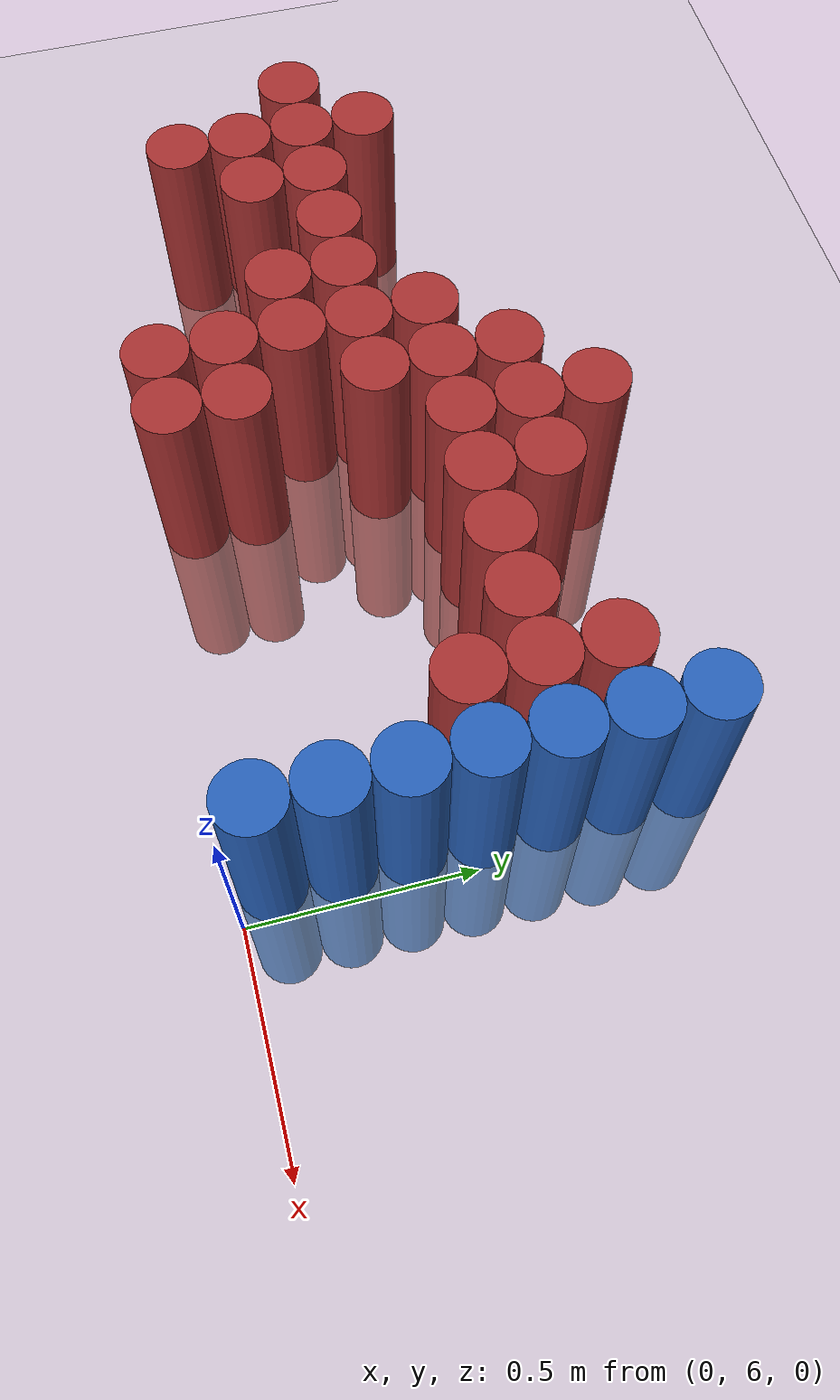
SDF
<sdf version="1.6">
 <world name="default">
  <model name="ground_plane">
   <static>1</static>
   <link name="link">
    <collision name="collision">
     <geometry><plane><normal>0 0 1</normal><size>100 100</size></plane></geometry>
     <surface><friction><ode><mu>100</mu><mu2>50</mu2></ode></friction></surface>
    </collision>
    <visual name="visual">
     <cast_shadows>0</cast_shadows>
     <geometry><plane><normal>0 0 1</normal><size>100 100</size></plane></geometry>
     <material>
      <script><uri>file://media/materials/scripts/gazebo.material</uri><name>Gazebo/Grey</name></script>
     </material>
    </visual>
   </link>
  </model>
  <model name="unit_cylinder_194">
   <static>1</static>
   <pose>-1.875000 6.525000 0.000000 0.000000 0.000000 0.000000</pose>
   <link name="link">
    <inertial>
     <mass>1</mass>
     <inertia><ixx>0.145833</ixx><ixy>0</ixy><ixz>0</ixz><iyy>0.145833</iyy><iyz>0</iyz><izz>0.125</izz></inertia>
    </inertial>
    <collision name="collision">
     <geometry><cylinder><radius>0.075000</radius><length>1</length></cylinder></geometry>
    </collision>
    <visual name="visual">
     <geometry><cylinder><radius>0.075000</radius><length>1</length></cylinder></geometry>
     <material>
      <ambient>0.648000 0.192000 0.192000 1</ambient>
      <diffuse>0.648000 0.192000 0.192000 1</diffuse>
     </material>
     <material>
      <script><name>Gazebo/Grey</name><uri>file://media/materials/scripts/gazebo.material</uri></script>
     </material>
    </visual>
    <sensor name="sensor_contact" type="contact"><contact><collision>collision</collision></contact></sensor>
   </link>
   <plugin filename="gz-sim-touchplugin-system" name="gz::sim::systems::TouchPlugin">
    <target>robot</target>
    <namespace>robot</namespace>
    <time>0.001</time>
    <enabled>true</enabled>
   </plugin>
  </model>
  <model name="unit_cylinder_198">
   <static>1</static>
   <pose>-1.725000 6.225000 0.000000 0.000000 0.000000 0.000000</pose>
   <link name="link">
    <inertial>
     <mass>1</mass>
     <inertia><ixx>0.145833</ixx><ixy>0</ixy><ixz>0</ixz><iyy>0.145833</iyy><iyz>0</iyz><izz>0.125</izz></inertia>
    </inertial>
    <collision name="collision">
     <geometry><cylinder><radius>0.075000</radius><length>1</length></cylinder></geometry>
    </collision>
    <visual name="visual">
     <geometry><cylinder><radius>0.075000</radius><length>1</length></cylinder></geometry>
     <material>
      <ambient>0.648000 0.192000 0.192000 1</ambient>
      <diffuse>0.648000 0.192000 0.192000 1</diffuse>
     </material>
     <material>
      <script><name>Gazebo/Grey</name><uri>file://media/materials/scripts/gazebo.material</uri></script>
     </material>
    </visual>
    <sensor name="sensor_contact" type="contact"><contact><collision>collision</collision></contact></sensor>
   </link>
   <plugin filename="gz-sim-touchplugin-system" name="gz::sim::systems::TouchPlugin">
    <target>robot</target>
    <namespace>robot</namespace>
    <time>0.001</time>
    <enabled>true</enabled>
   </plugin>
  </model>
  <model name="unit_cylinder_199">
   <static>1</static>
   <pose>-1.725000 6.375000 0.000000 0.000000 0.000000 0.000000</pose>
   <link name="link">
    <inertial>
     <mass>1</mass>
     <inertia><ixx>0.145833</ixx><ixy>0</ixy><ixz>0</ixz><iyy>0.145833</iyy><iyz>0</iyz><izz>0.125</izz></inertia>
    </inertial>
    <collision name="collision">
     <geometry><cylinder><radius>0.075000</radius><length>1</length></cylinder></geometry>
    </collision>
    <visual name="visual">
     <geometry><cylinder><radius>0.075000</radius><length>1</length></cylinder></geometry>
     <material>
      <ambient>0.648000 0.192000 0.192000 1</ambient>
      <diffuse>0.648000 0.192000 0.192000 1</diffuse>
     </material>
     <material>
      <script><name>Gazebo/Grey</name><uri>file://media/materials/scripts/gazebo.material</uri></script>
     </material>
    </visual>
    <sensor name="sensor_contact" type="contact"><contact><collision>collision</collision></contact></sensor>
   </link>
   <plugin filename="gz-sim-touchplugin-system" name="gz::sim::systems::TouchPlugin">
    <target>robot</target>
    <namespace>robot</namespace>
    <time>0.001</time>
    <enabled>true</enabled>
   </plugin>
  </model>
  <model name="unit_cylinder_200">
   <static>1</static>
   <pose>-1.725000 6.525000 0.000000 0.000000 0.000000 0.000000</pose>
   <link name="link">
    <inertial>
     <mass>1</mass>
     <inertia><ixx>0.145833</ixx><ixy>0</ixy><ixz>0</ixz><iyy>0.145833</iyy><iyz>0</iyz><izz>0.125</izz></inertia>
    </inertial>
    <collision name="collision">
     <geometry><cylinder><radius>0.075000</radius><length>1</length></cylinder></geometry>
    </collision>
    <visual name="visual">
     <geometry><cylinder><radius>0.075000</radius><length>1</length></cylinder></geometry>
     <material>
      <ambient>0.648000 0.192000 0.192000 1</ambient>
      <diffuse>0.648000 0.192000 0.192000 1</diffuse>
     </material>
     <material>
      <script><name>Gazebo/Grey</name><uri>file://media/materials/scripts/gazebo.material</uri></script>
     </material>
    </visual>
    <sensor name="sensor_contact" type="contact"><contact><collision>collision</collision></contact></sensor>
   </link>
   <plugin filename="gz-sim-touchplugin-system" name="gz::sim::systems::TouchPlugin">
    <target>robot</target>
    <namespace>robot</namespace>
    <time>0.001</time>
    <enabled>true</enabled>
   </plugin>
  </model>
  <model name="unit_cylinder_201">
   <static>1</static>
   <pose>-1.725000 6.675000 0.000000 0.000000 0.000000 0.000000</pose>
   <link name="link">
    <inertial>
     <mass>1</mass>
     <inertia><ixx>0.145833</ixx><ixy>0</ixy><ixz>0</ixz><iyy>0.145833</iyy><iyz>0</iyz><izz>0.125</izz></inertia>
    </inertial>
    <collision name="collision">
     <geometry><cylinder><radius>0.075000</radius><length>1</length></cylinder></geometry>
    </collision>
    <visual name="visual">
     <geometry><cylinder><radius>0.075000</radius><length>1</length></cylinder></geometry>
     <material>
      <ambient>0.648000 0.192000 0.192000 1</ambient>
      <diffuse>0.648000 0.192000 0.192000 1</diffuse>
     </material>
     <material>
      <script><name>Gazebo/Grey</name><uri>file://media/materials/scripts/gazebo.material</uri></script>
     </material>
    </visual>
    <sensor name="sensor_contact" type="contact"><contact><collision>collision</collision></contact></sensor>
   </link>
   <plugin filename="gz-sim-touchplugin-system" name="gz::sim::systems::TouchPlugin">
    <target>robot</target>
    <namespace>robot</namespace>
    <time>0.001</time>
    <enabled>true</enabled>
   </plugin>
  </model>
  <model name="unit_cylinder_207">
   <static>1</static>
   <pose>-1.575000 6.375000 0.000000 0.000000 0.000000 0.000000</pose>
   <link name="link">
    <inertial>
     <mass>1</mass>
     <inertia><ixx>0.145833</ixx><ixy>0</ixy><ixz>0</ixz><iyy>0.145833</iyy><iyz>0</iyz><izz>0.125</izz></inertia>
    </inertial>
    <collision name="collision">
     <geometry><cylinder><radius>0.075000</radius><length>1</length></cylinder></geometry>
    </collision>
    <visual name="visual">
     <geometry><cylinder><radius>0.075000</radius><length>1</length></cylinder></geometry>
     <material>
      <ambient>0.648000 0.192000 0.192000 1</ambient>
      <diffuse>0.648000 0.192000 0.192000 1</diffuse>
     </material>
     <material>
      <script><name>Gazebo/Grey</name><uri>file://media/materials/scripts/gazebo.material</uri></script>
     </material>
    </visual>
    <sensor name="sensor_contact" type="contact"><contact><collision>collision</collision></contact></sensor>
   </link>
   <plugin filename="gz-sim-touchplugin-system" name="gz::sim::systems::TouchPlugin">
    <target>robot</target>
    <namespace>robot</namespace>
    <time>0.001</time>
    <enabled>true</enabled>
   </plugin>
  </model>
  <model name="unit_cylinder_208">
   <static>1</static>
   <pose>-1.575000 6.525000 0.000000 0.000000 0.000000 0.000000</pose>
   <link name="link">
    <inertial>
     <mass>1</mass>
     <inertia><ixx>0.145833</ixx><ixy>0</ixy><ixz>0</ixz><iyy>0.145833</iyy><iyz>0</iyz><izz>0.125</izz></inertia>
    </inertial>
    <collision name="collision">
     <geometry><cylinder><radius>0.075000</radius><length>1</length></cylinder></geometry>
    </collision>
    <visual name="visual">
     <geometry><cylinder><radius>0.075000</radius><length>1</length></cylinder></geometry>
     <material>
      <ambient>0.648000 0.192000 0.192000 1</ambient>
      <diffuse>0.648000 0.192000 0.192000 1</diffuse>
     </material>
     <material>
      <script><name>Gazebo/Grey</name><uri>file://media/materials/scripts/gazebo.material</uri></script>
     </material>
    </visual>
    <sensor name="sensor_contact" type="contact"><contact><collision>collision</collision></contact></sensor>
   </link>
   <plugin filename="gz-sim-touchplugin-system" name="gz::sim::systems::TouchPlugin">
    <target>robot</target>
    <namespace>robot</namespace>
    <time>0.001</time>
    <enabled>true</enabled>
   </plugin>
  </model>
  <model name="unit_cylinder_218">
   <static>1</static>
   <pose>-1.425000 6.525000 0.000000 0.000000 0.000000 0.000000</pose>
   <link name="link">
    <inertial>
     <mass>1</mass>
     <inertia><ixx>0.145833</ixx><ixy>0</ixy><ixz>0</ixz><iyy>0.145833</iyy><iyz>0</iyz><izz>0.125</izz></inertia>
    </inertial>
    <collision name="collision">
     <geometry><cylinder><radius>0.075000</radius><length>1</length></cylinder></geometry>
    </collision>
    <visual name="visual">
     <geometry><cylinder><radius>0.075000</radius><length>1</length></cylinder></geometry>
     <material>
      <ambient>0.648000 0.192000 0.192000 1</ambient>
      <diffuse>0.648000 0.192000 0.192000 1</diffuse>
     </material>
     <material>
      <script><name>Gazebo/Grey</name><uri>file://media/materials/scripts/gazebo.material</uri></script>
     </material>
    </visual>
    <sensor name="sensor_contact" type="contact"><contact><collision>collision</collision></contact></sensor>
   </link>
   <plugin filename="gz-sim-touchplugin-system" name="gz::sim::systems::TouchPlugin">
    <target>robot</target>
    <namespace>robot</namespace>
    <time>0.001</time>
    <enabled>true</enabled>
   </plugin>
  </model>
  <model name="unit_cylinder_230">
   <static>1</static>
   <pose>-1.275000 6.375000 0.000000 0.000000 0.000000 0.000000</pose>
   <link name="link">
    <inertial>
     <mass>1</mass>
     <inertia><ixx>0.145833</ixx><ixy>0</ixy><ixz>0</ixz><iyy>0.145833</iyy><iyz>0</iyz><izz>0.125</izz></inertia>
    </inertial>
    <collision name="collision">
     <geometry><cylinder><radius>0.075000</radius><length>1</length></cylinder></geometry>
    </collision>
    <visual name="visual">
     <geometry><cylinder><radius>0.075000</radius><length>1</length></cylinder></geometry>
     <material>
      <ambient>0.648000 0.192000 0.192000 1</ambient>
      <diffuse>0.648000 0.192000 0.192000 1</diffuse>
     </material>
     <material>
      <script><name>Gazebo/Grey</name><uri>file://media/materials/scripts/gazebo.material</uri></script>
     </material>
    </visual>
    <sensor name="sensor_contact" type="contact"><contact><collision>collision</collision></contact></sensor>
   </link>
   <plugin filename="gz-sim-touchplugin-system" name="gz::sim::systems::TouchPlugin">
    <target>robot</target>
    <namespace>robot</namespace>
    <time>0.001</time>
    <enabled>true</enabled>
   </plugin>
  </model>
  <model name="unit_cylinder_231">
   <static>1</static>
   <pose>-1.275000 6.525000 0.000000 0.000000 0.000000 0.000000</pose>
   <link name="link">
    <inertial>
     <mass>1</mass>
     <inertia><ixx>0.145833</ixx><ixy>0</ixy><ixz>0</ixz><iyy>0.145833</iyy><iyz>0</iyz><izz>0.125</izz></inertia>
    </inertial>
    <collision name="collision">
     <geometry><cylinder><radius>0.075000</radius><length>1</length></cylinder></geometry>
    </collision>
    <visual name="visual">
     <geometry><cylinder><radius>0.075000</radius><length>1</length></cylinder></geometry>
     <material>
      <ambient>0.648000 0.192000 0.192000 1</ambient>
      <diffuse>0.648000 0.192000 0.192000 1</diffuse>
     </material>
     <material>
      <script><name>Gazebo/Grey</name><uri>file://media/materials/scripts/gazebo.material</uri></script>
     </material>
    </visual>
    <sensor name="sensor_contact" type="contact"><contact><collision>collision</collision></contact></sensor>
   </link>
   <plugin filename="gz-sim-touchplugin-system" name="gz::sim::systems::TouchPlugin">
    <target>robot</target>
    <namespace>robot</namespace>
    <time>0.001</time>
    <enabled>true</enabled>
   </plugin>
  </model>
  <model name="unit_cylinder_240">
   <static>1</static>
   <pose>-1.125000 6.075000 0.000000 0.000000 0.000000 0.000000</pose>
   <link name="link">
    <inertial>
     <mass>1</mass>
     <inertia><ixx>0.145833</ixx><ixy>0</ixy><ixz>0</ixz><iyy>0.145833</iyy><iyz>0</iyz><izz>0.125</izz></inertia>
    </inertial>
    <collision name="collision">
     <geometry><cylinder><radius>0.075000</radius><length>1</length></cylinder></geometry>
    </collision>
    <visual name="visual">
     <geometry><cylinder><radius>0.075000</radius><length>1</length></cylinder></geometry>
     <material>
      <ambient>0.648000 0.192000 0.192000 1</ambient>
      <diffuse>0.648000 0.192000 0.192000 1</diffuse>
     </material>
     <material>
      <script><name>Gazebo/Grey</name><uri>file://media/materials/scripts/gazebo.material</uri></script>
     </material>
    </visual>
    <sensor name="sensor_contact" type="contact"><contact><collision>collision</collision></contact></sensor>
   </link>
   <plugin filename="gz-sim-touchplugin-system" name="gz::sim::systems::TouchPlugin">
    <target>robot</target>
    <namespace>robot</namespace>
    <time>0.001</time>
    <enabled>true</enabled>
   </plugin>
  </model>
  <model name="unit_cylinder_241">
   <static>1</static>
   <pose>-1.125000 6.225000 0.000000 0.000000 0.000000 0.000000</pose>
   <link name="link">
    <inertial>
     <mass>1</mass>
     <inertia><ixx>0.145833</ixx><ixy>0</ixy><ixz>0</ixz><iyy>0.145833</iyy><iyz>0</iyz><izz>0.125</izz></inertia>
    </inertial>
    <collision name="collision">
     <geometry><cylinder><radius>0.075000</radius><length>1</length></cylinder></geometry>
    </collision>
    <visual name="visual">
     <geometry><cylinder><radius>0.075000</radius><length>1</length></cylinder></geometry>
     <material>
      <ambient>0.648000 0.192000 0.192000 1</ambient>
      <diffuse>0.648000 0.192000 0.192000 1</diffuse>
     </material>
     <material>
      <script><name>Gazebo/Grey</name><uri>file://media/materials/scripts/gazebo.material</uri></script>
     </material>
    </visual>
    <sensor name="sensor_contact" type="contact"><contact><collision>collision</collision></contact></sensor>
   </link>
   <plugin filename="gz-sim-touchplugin-system" name="gz::sim::systems::TouchPlugin">
    <target>robot</target>
    <namespace>robot</namespace>
    <time>0.001</time>
    <enabled>true</enabled>
   </plugin>
  </model>
  <model name="unit_cylinder_242">
   <static>1</static>
   <pose>-1.125000 6.375000 0.000000 0.000000 0.000000 0.000000</pose>
   <link name="link">
    <inertial>
     <mass>1</mass>
     <inertia><ixx>0.145833</ixx><ixy>0</ixy><ixz>0</ixz><iyy>0.145833</iyy><iyz>0</iyz><izz>0.125</izz></inertia>
    </inertial>
    <collision name="collision">
     <geometry><cylinder><radius>0.075000</radius><length>1</length></cylinder></geometry>
    </collision>
    <visual name="visual">
     <geometry><cylinder><radius>0.075000</radius><length>1</length></cylinder></geometry>
     <material>
      <ambient>0.648000 0.192000 0.192000 1</ambient>
      <diffuse>0.648000 0.192000 0.192000 1</diffuse>
     </material>
     <material>
      <script><name>Gazebo/Grey</name><uri>file://media/materials/scripts/gazebo.material</uri></script>
     </material>
    </visual>
    <sensor name="sensor_contact" type="contact"><contact><collision>collision</collision></contact></sensor>
   </link>
   <plugin filename="gz-sim-touchplugin-system" name="gz::sim::systems::TouchPlugin">
    <target>robot</target>
    <namespace>robot</namespace>
    <time>0.001</time>
    <enabled>true</enabled>
   </plugin>
  </model>
  <model name="unit_cylinder_243">
   <static>1</static>
   <pose>-1.125000 6.525000 0.000000 0.000000 0.000000 0.000000</pose>
   <link name="link">
    <inertial>
     <mass>1</mass>
     <inertia><ixx>0.145833</ixx><ixy>0</ixy><ixz>0</ixz><iyy>0.145833</iyy><iyz>0</iyz><izz>0.125</izz></inertia>
    </inertial>
    <collision name="collision">
     <geometry><cylinder><radius>0.075000</radius><length>1</length></cylinder></geometry>
    </collision>
    <visual name="visual">
     <geometry><cylinder><radius>0.075000</radius><length>1</length></cylinder></geometry>
     <material>
      <ambient>0.648000 0.192000 0.192000 1</ambient>
      <diffuse>0.648000 0.192000 0.192000 1</diffuse>
     </material>
     <material>
      <script><name>Gazebo/Grey</name><uri>file://media/materials/scripts/gazebo.material</uri></script>
     </material>
    </visual>
    <sensor name="sensor_contact" type="contact"><contact><collision>collision</collision></contact></sensor>
   </link>
   <plugin filename="gz-sim-touchplugin-system" name="gz::sim::systems::TouchPlugin">
    <target>robot</target>
    <namespace>robot</namespace>
    <time>0.001</time>
    <enabled>true</enabled>
   </plugin>
  </model>
  <model name="unit_cylinder_244">
   <static>1</static>
   <pose>-1.125000 6.675000 0.000000 0.000000 0.000000 0.000000</pose>
   <link name="link">
    <inertial>
     <mass>1</mass>
     <inertia><ixx>0.145833</ixx><ixy>0</ixy><ixz>0</ixz><iyy>0.145833</iyy><iyz>0</iyz><izz>0.125</izz></inertia>
    </inertial>
    <collision name="collision">
     <geometry><cylinder><radius>0.075000</radius><length>1</length></cylinder></geometry>
    </collision>
    <visual name="visual">
     <geometry><cylinder><radius>0.075000</radius><length>1</length></cylinder></geometry>
     <material>
      <ambient>0.648000 0.192000 0.192000 1</ambient>
      <diffuse>0.648000 0.192000 0.192000 1</diffuse>
     </material>
     <material>
      <script><name>Gazebo/Grey</name><uri>file://media/materials/scripts/gazebo.material</uri></script>
     </material>
    </visual>
    <sensor name="sensor_contact" type="contact"><contact><collision>collision</collision></contact></sensor>
   </link>
   <plugin filename="gz-sim-touchplugin-system" name="gz::sim::systems::TouchPlugin">
    <target>robot</target>
    <namespace>robot</namespace>
    <time>0.001</time>
    <enabled>true</enabled>
   </plugin>
  </model>
  <model name="unit_cylinder_251">
   <static>1</static>
   <pose>-0.975000 6.075000 0.000000 0.000000 0.000000 0.000000</pose>
   <link name="link">
    <inertial>
     <mass>1</mass>
     <inertia><ixx>0.145833</ixx><ixy>0</ixy><ixz>0</ixz><iyy>0.145833</iyy><iyz>0</iyz><izz>0.125</izz></inertia>
    </inertial>
    <collision name="collision">
     <geometry><cylinder><radius>0.075000</radius><length>1</length></cylinder></geometry>
    </collision>
    <visual name="visual">
     <geometry><cylinder><radius>0.075000</radius><length>1</length></cylinder></geometry>
     <material>
      <ambient>0.648000 0.192000 0.192000 1</ambient>
      <diffuse>0.648000 0.192000 0.192000 1</diffuse>
     </material>
     <material>
      <script><name>Gazebo/Grey</name><uri>file://media/materials/scripts/gazebo.material</uri></script>
     </material>
    </visual>
    <sensor name="sensor_contact" type="contact"><contact><collision>collision</collision></contact></sensor>
   </link>
   <plugin filename="gz-sim-touchplugin-system" name="gz::sim::systems::TouchPlugin">
    <target>robot</target>
    <namespace>robot</namespace>
    <time>0.001</time>
    <enabled>true</enabled>
   </plugin>
  </model>
  <model name="unit_cylinder_252">
   <static>1</static>
   <pose>-0.975000 6.225000 0.000000 0.000000 0.000000 0.000000</pose>
   <link name="link">
    <inertial>
     <mass>1</mass>
     <inertia><ixx>0.145833</ixx><ixy>0</ixy><ixz>0</ixz><iyy>0.145833</iyy><iyz>0</iyz><izz>0.125</izz></inertia>
    </inertial>
    <collision name="collision">
     <geometry><cylinder><radius>0.075000</radius><length>1</length></cylinder></geometry>
    </collision>
    <visual name="visual">
     <geometry><cylinder><radius>0.075000</radius><length>1</length></cylinder></geometry>
     <material>
      <ambient>0.648000 0.192000 0.192000 1</ambient>
      <diffuse>0.648000 0.192000 0.192000 1</diffuse>
     </material>
     <material>
      <script><name>Gazebo/Grey</name><uri>file://media/materials/scripts/gazebo.material</uri></script>
     </material>
    </visual>
    <sensor name="sensor_contact" type="contact"><contact><collision>collision</collision></contact></sensor>
   </link>
   <plugin filename="gz-sim-touchplugin-system" name="gz::sim::systems::TouchPlugin">
    <target>robot</target>
    <namespace>robot</namespace>
    <time>0.001</time>
    <enabled>true</enabled>
   </plugin>
  </model>
  <model name="unit_cylinder_253">
   <static>1</static>
   <pose>-0.975000 6.525000 0.000000 0.000000 0.000000 0.000000</pose>
   <link name="link">
    <inertial>
     <mass>1</mass>
     <inertia><ixx>0.145833</ixx><ixy>0</ixy><ixz>0</ixz><iyy>0.145833</iyy><iyz>0</iyz><izz>0.125</izz></inertia>
    </inertial>
    <collision name="collision">
     <geometry><cylinder><radius>0.075000</radius><length>1</length></cylinder></geometry>
    </collision>
    <visual name="visual">
     <geometry><cylinder><radius>0.075000</radius><length>1</length></cylinder></geometry>
     <material>
      <ambient>0.648000 0.192000 0.192000 1</ambient>
      <diffuse>0.648000 0.192000 0.192000 1</diffuse>
     </material>
     <material>
      <script><name>Gazebo/Grey</name><uri>file://media/materials/scripts/gazebo.material</uri></script>
     </material>
    </visual>
    <sensor name="sensor_contact" type="contact"><contact><collision>collision</collision></contact></sensor>
   </link>
   <plugin filename="gz-sim-touchplugin-system" name="gz::sim::systems::TouchPlugin">
    <target>robot</target>
    <namespace>robot</namespace>
    <time>0.001</time>
    <enabled>true</enabled>
   </plugin>
  </model>
  <model name="unit_cylinder_254">
   <static>1</static>
   <pose>-0.975000 6.675000 0.000000 0.000000 0.000000 0.000000</pose>
   <link name="link">
    <inertial>
     <mass>1</mass>
     <inertia><ixx>0.145833</ixx><ixy>0</ixy><ixz>0</ixz><iyy>0.145833</iyy><iyz>0</iyz><izz>0.125</izz></inertia>
    </inertial>
    <collision name="collision">
     <geometry><cylinder><radius>0.075000</radius><length>1</length></cylinder></geometry>
    </collision>
    <visual name="visual">
     <geometry><cylinder><radius>0.075000</radius><length>1</length></cylinder></geometry>
     <material>
      <ambient>0.648000 0.192000 0.192000 1</ambient>
      <diffuse>0.648000 0.192000 0.192000 1</diffuse>
     </material>
     <material>
      <script><name>Gazebo/Grey</name><uri>file://media/materials/scripts/gazebo.material</uri></script>
     </material>
    </visual>
    <sensor name="sensor_contact" type="contact"><contact><collision>collision</collision></contact></sensor>
   </link>
   <plugin filename="gz-sim-touchplugin-system" name="gz::sim::systems::TouchPlugin">
    <target>robot</target>
    <namespace>robot</namespace>
    <time>0.001</time>
    <enabled>true</enabled>
   </plugin>
  </model>
  <model name="unit_cylinder_255">
   <static>1</static>
   <pose>-0.975000 6.825000 0.000000 0.000000 0.000000 0.000000</pose>
   <link name="link">
    <inertial>
     <mass>1</mass>
     <inertia><ixx>0.145833</ixx><ixy>0</ixy><ixz>0</ixz><iyy>0.145833</iyy><iyz>0</iyz><izz>0.125</izz></inertia>
    </inertial>
    <collision name="collision">
     <geometry><cylinder><radius>0.075000</radius><length>1</length></cylinder></geometry>
    </collision>
    <visual name="visual">
     <geometry><cylinder><radius>0.075000</radius><length>1</length></cylinder></geometry>
     <material>
      <ambient>0.648000 0.192000 0.192000 1</ambient>
      <diffuse>0.648000 0.192000 0.192000 1</diffuse>
     </material>
     <material>
      <script><name>Gazebo/Grey</name><uri>file://media/materials/scripts/gazebo.material</uri></script>
     </material>
    </visual>
    <sensor name="sensor_contact" type="contact"><contact><collision>collision</collision></contact></sensor>
   </link>
   <plugin filename="gz-sim-touchplugin-system" name="gz::sim::systems::TouchPlugin">
    <target>robot</target>
    <namespace>robot</namespace>
    <time>0.001</time>
    <enabled>true</enabled>
   </plugin>
  </model>
  <model name="unit_cylinder_263">
   <static>1</static>
   <pose>-0.825000 6.675000 0.000000 0.000000 0.000000 0.000000</pose>
   <link name="link">
    <inertial>
     <mass>1</mass>
     <inertia><ixx>0.145833</ixx><ixy>0</ixy><ixz>0</ixz><iyy>0.145833</iyy><iyz>0</iyz><izz>0.125</izz></inertia>
    </inertial>
    <collision name="collision">
     <geometry><cylinder><radius>0.075000</radius><length>1</length></cylinder></geometry>
    </collision>
    <visual name="visual">
     <geometry><cylinder><radius>0.075000</radius><length>1</length></cylinder></geometry>
     <material>
      <ambient>0.648000 0.192000 0.192000 1</ambient>
      <diffuse>0.648000 0.192000 0.192000 1</diffuse>
     </material>
     <material>
      <script><name>Gazebo/Grey</name><uri>file://media/materials/scripts/gazebo.material</uri></script>
     </material>
    </visual>
    <sensor name="sensor_contact" type="contact"><contact><collision>collision</collision></contact></sensor>
   </link>
   <plugin filename="gz-sim-touchplugin-system" name="gz::sim::systems::TouchPlugin">
    <target>robot</target>
    <namespace>robot</namespace>
    <time>0.001</time>
    <enabled>true</enabled>
   </plugin>
  </model>
  <model name="unit_cylinder_264">
   <static>1</static>
   <pose>-0.825000 6.825000 0.000000 0.000000 0.000000 0.000000</pose>
   <link name="link">
    <inertial>
     <mass>1</mass>
     <inertia><ixx>0.145833</ixx><ixy>0</ixy><ixz>0</ixz><iyy>0.145833</iyy><iyz>0</iyz><izz>0.125</izz></inertia>
    </inertial>
    <collision name="collision">
     <geometry><cylinder><radius>0.075000</radius><length>1</length></cylinder></geometry>
    </collision>
    <visual name="visual">
     <geometry><cylinder><radius>0.075000</radius><length>1</length></cylinder></geometry>
     <material>
      <ambient>0.648000 0.192000 0.192000 1</ambient>
      <diffuse>0.648000 0.192000 0.192000 1</diffuse>
     </material>
     <material>
      <script><name>Gazebo/Grey</name><uri>file://media/materials/scripts/gazebo.material</uri></script>
     </material>
    </visual>
    <sensor name="sensor_contact" type="contact"><contact><collision>collision</collision></contact></sensor>
   </link>
   <plugin filename="gz-sim-touchplugin-system" name="gz::sim::systems::TouchPlugin">
    <target>robot</target>
    <namespace>robot</namespace>
    <time>0.001</time>
    <enabled>true</enabled>
   </plugin>
  </model>
  <model name="unit_cylinder_265">
   <static>1</static>
   <pose>-0.825000 6.975000 0.000000 0.000000 0.000000 0.000000</pose>
   <link name="link">
    <inertial>
     <mass>1</mass>
     <inertia><ixx>0.145833</ixx><ixy>0</ixy><ixz>0</ixz><iyy>0.145833</iyy><iyz>0</iyz><izz>0.125</izz></inertia>
    </inertial>
    <collision name="collision">
     <geometry><cylinder><radius>0.075000</radius><length>1</length></cylinder></geometry>
    </collision>
    <visual name="visual">
     <geometry><cylinder><radius>0.075000</radius><length>1</length></cylinder></geometry>
     <material>
      <ambient>0.648000 0.192000 0.192000 1</ambient>
      <diffuse>0.648000 0.192000 0.192000 1</diffuse>
     </material>
     <material>
      <script><name>Gazebo/Grey</name><uri>file://media/materials/scripts/gazebo.material</uri></script>
     </material>
    </visual>
    <sensor name="sensor_contact" type="contact"><contact><collision>collision</collision></contact></sensor>
   </link>
   <plugin filename="gz-sim-touchplugin-system" name="gz::sim::systems::TouchPlugin">
    <target>robot</target>
    <namespace>robot</namespace>
    <time>0.001</time>
    <enabled>true</enabled>
   </plugin>
  </model>
  <model name="unit_cylinder_270">
   <static>1</static>
   <pose>-0.675000 6.675000 0.000000 0.000000 0.000000 0.000000</pose>
   <link name="link">
    <inertial>
     <mass>1</mass>
     <inertia><ixx>0.145833</ixx><ixy>0</ixy><ixz>0</ixz><iyy>0.145833</iyy><iyz>0</iyz><izz>0.125</izz></inertia>
    </inertial>
    <collision name="collision">
     <geometry><cylinder><radius>0.075000</radius><length>1</length></cylinder></geometry>
    </collision>
    <visual name="visual">
     <geometry><cylinder><radius>0.075000</radius><length>1</length></cylinder></geometry>
     <material>
      <ambient>0.648000 0.192000 0.192000 1</ambient>
      <diffuse>0.648000 0.192000 0.192000 1</diffuse>
     </material>
     <material>
      <script><name>Gazebo/Grey</name><uri>file://media/materials/scripts/gazebo.material</uri></script>
     </material>
    </visual>
    <sensor name="sensor_contact" type="contact"><contact><collision>collision</collision></contact></sensor>
   </link>
   <plugin filename="gz-sim-touchplugin-system" name="gz::sim::systems::TouchPlugin">
    <target>robot</target>
    <namespace>robot</namespace>
    <time>0.001</time>
    <enabled>true</enabled>
   </plugin>
  </model>
  <model name="unit_cylinder_271">
   <static>1</static>
   <pose>-0.675000 6.825000 0.000000 0.000000 0.000000 0.000000</pose>
   <link name="link">
    <inertial>
     <mass>1</mass>
     <inertia><ixx>0.145833</ixx><ixy>0</ixy><ixz>0</ixz><iyy>0.145833</iyy><iyz>0</iyz><izz>0.125</izz></inertia>
    </inertial>
    <collision name="collision">
     <geometry><cylinder><radius>0.075000</radius><length>1</length></cylinder></geometry>
    </collision>
    <visual name="visual">
     <geometry><cylinder><radius>0.075000</radius><length>1</length></cylinder></geometry>
     <material>
      <ambient>0.648000 0.192000 0.192000 1</ambient>
      <diffuse>0.648000 0.192000 0.192000 1</diffuse>
     </material>
     <material>
      <script><name>Gazebo/Grey</name><uri>file://media/materials/scripts/gazebo.material</uri></script>
     </material>
    </visual>
    <sensor name="sensor_contact" type="contact"><contact><collision>collision</collision></contact></sensor>
   </link>
   <plugin filename="gz-sim-touchplugin-system" name="gz::sim::systems::TouchPlugin">
    <target>robot</target>
    <namespace>robot</namespace>
    <time>0.001</time>
    <enabled>true</enabled>
   </plugin>
  </model>
  <model name="unit_cylinder_278">
   <static>1</static>
   <pose>-0.525000 6.675000 0.000000 0.000000 0.000000 0.000000</pose>
   <link name="link">
    <inertial>
     <mass>1</mass>
     <inertia><ixx>0.145833</ixx><ixy>0</ixy><ixz>0</ixz><iyy>0.145833</iyy><iyz>0</iyz><izz>0.125</izz></inertia>
    </inertial>
    <collision name="collision">
     <geometry><cylinder><radius>0.075000</radius><length>1</length></cylinder></geometry>
    </collision>
    <visual name="visual">
     <geometry><cylinder><radius>0.075000</radius><length>1</length></cylinder></geometry>
     <material>
      <ambient>0.648000 0.192000 0.192000 1</ambient>
      <diffuse>0.648000 0.192000 0.192000 1</diffuse>
     </material>
     <material>
      <script><name>Gazebo/Grey</name><uri>file://media/materials/scripts/gazebo.material</uri></script>
     </material>
    </visual>
    <sensor name="sensor_contact" type="contact"><contact><collision>collision</collision></contact></sensor>
   </link>
   <plugin filename="gz-sim-touchplugin-system" name="gz::sim::systems::TouchPlugin">
    <target>robot</target>
    <namespace>robot</namespace>
    <time>0.001</time>
    <enabled>true</enabled>
   </plugin>
  </model>
  <model name="unit_cylinder_284">
   <static>1</static>
   <pose>-0.375000 6.675000 0.000000 0.000000 0.000000 0.000000</pose>
   <link name="link">
    <inertial>
     <mass>1</mass>
     <inertia><ixx>0.145833</ixx><ixy>0</ixy><ixz>0</ixz><iyy>0.145833</iyy><iyz>0</iyz><izz>0.125</izz></inertia>
    </inertial>
    <collision name="collision">
     <geometry><cylinder><radius>0.075000</radius><length>1</length></cylinder></geometry>
    </collision>
    <visual name="visual">
     <geometry><cylinder><radius>0.075000</radius><length>1</length></cylinder></geometry>
     <material>
      <ambient>0.648000 0.192000 0.192000 1</ambient>
      <diffuse>0.648000 0.192000 0.192000 1</diffuse>
     </material>
     <material>
      <script><name>Gazebo/Grey</name><uri>file://media/materials/scripts/gazebo.material</uri></script>
     </material>
    </visual>
    <sensor name="sensor_contact" type="contact"><contact><collision>collision</collision></contact></sensor>
   </link>
   <plugin filename="gz-sim-touchplugin-system" name="gz::sim::systems::TouchPlugin">
    <target>robot</target>
    <namespace>robot</namespace>
    <time>0.001</time>
    <enabled>true</enabled>
   </plugin>
  </model>
  <model name="unit_cylinder_295">
   <static>1</static>
   <pose>-0.225000 6.525000 0.000000 0.000000 0.000000 0.000000</pose>
   <link name="link">
    <inertial>
     <mass>1</mass>
     <inertia><ixx>0.145833</ixx><ixy>0</ixy><ixz>0</ixz><iyy>0.145833</iyy><iyz>0</iyz><izz>0.125</izz></inertia>
    </inertial>
    <collision name="collision">
     <geometry><cylinder><radius>0.075000</radius><length>1</length></cylinder></geometry>
    </collision>
    <visual name="visual">
     <geometry><cylinder><radius>0.075000</radius><length>1</length></cylinder></geometry>
     <material>
      <ambient>0.648000 0.192000 0.192000 1</ambient>
      <diffuse>0.648000 0.192000 0.192000 1</diffuse>
     </material>
     <material>
      <script><name>Gazebo/Grey</name><uri>file://media/materials/scripts/gazebo.material</uri></script>
     </material>
    </visual>
    <sensor name="sensor_contact" type="contact"><contact><collision>collision</collision></contact></sensor>
   </link>
   <plugin filename="gz-sim-touchplugin-system" name="gz::sim::systems::TouchPlugin">
    <target>robot</target>
    <namespace>robot</namespace>
    <time>0.001</time>
    <enabled>true</enabled>
   </plugin>
  </model>
  <model name="unit_cylinder_296">
   <static>1</static>
   <pose>-0.225000 6.675000 0.000000 0.000000 0.000000 0.000000</pose>
   <link name="link">
    <inertial>
     <mass>1</mass>
     <inertia><ixx>0.145833</ixx><ixy>0</ixy><ixz>0</ixz><iyy>0.145833</iyy><iyz>0</iyz><izz>0.125</izz></inertia>
    </inertial>
    <collision name="collision">
     <geometry><cylinder><radius>0.075000</radius><length>1</length></cylinder></geometry>
    </collision>
    <visual name="visual">
     <geometry><cylinder><radius>0.075000</radius><length>1</length></cylinder></geometry>
     <material>
      <ambient>0.648000 0.192000 0.192000 1</ambient>
      <diffuse>0.648000 0.192000 0.192000 1</diffuse>
     </material>
     <material>
      <script><name>Gazebo/Grey</name><uri>file://media/materials/scripts/gazebo.material</uri></script>
     </material>
    </visual>
    <sensor name="sensor_contact" type="contact"><contact><collision>collision</collision></contact></sensor>
   </link>
   <plugin filename="gz-sim-touchplugin-system" name="gz::sim::systems::TouchPlugin">
    <target>robot</target>
    <namespace>robot</namespace>
    <time>0.001</time>
    <enabled>true</enabled>
   </plugin>
  </model>
  <model name="unit_cylinder_297">
   <static>1</static>
   <pose>-0.225000 6.825000 0.000000 0.000000 0.000000 0.000000</pose>
   <link name="link">
    <inertial>
     <mass>1</mass>
     <inertia><ixx>0.145833</ixx><ixy>0</ixy><ixz>0</ixz><iyy>0.145833</iyy><iyz>0</iyz><izz>0.125</izz></inertia>
    </inertial>
    <collision name="collision">
     <geometry><cylinder><radius>0.075000</radius><length>1</length></cylinder></geometry>
    </collision>
    <visual name="visual">
     <geometry><cylinder><radius>0.075000</radius><length>1</length></cylinder></geometry>
     <material>
      <ambient>0.648000 0.192000 0.192000 1</ambient>
      <diffuse>0.648000 0.192000 0.192000 1</diffuse>
     </material>
     <material>
      <script><name>Gazebo/Grey</name><uri>file://media/materials/scripts/gazebo.material</uri></script>
     </material>
    </visual>
    <sensor name="sensor_contact" type="contact"><contact><collision>collision</collision></contact></sensor>
   </link>
   <plugin filename="gz-sim-touchplugin-system" name="gz::sim::systems::TouchPlugin">
    <target>robot</target>
    <namespace>robot</namespace>
    <time>0.001</time>
    <enabled>true</enabled>
   </plugin>
  </model>
  <model name="unit_cylinder_313">
   <static>1</static>
   <pose>-0.075000 6.075000 0.000000 0.000000 0.000000 0.000000</pose>
   <link name="link">
    <inertial>
     <mass>1</mass>
     <inertia><ixx>0.145833</ixx><ixy>0</ixy><ixz>0</ixz><iyy>0.145833</iyy><iyz>0</iyz><izz>0.125</izz></inertia>
    </inertial>
    <collision name="collision">
     <geometry><cylinder><radius>0.075000</radius><length>1</length></cylinder></geometry>
    </collision>
    <visual name="visual">
     <geometry><cylinder><radius>0.075000</radius><length>1</length></cylinder></geometry>
     <material>
      <ambient>0.152000 0.379000 0.720000 1</ambient>
      <diffuse>0.152000 0.379000 0.720000 1</diffuse>
     </material>
     <material>
      <script><name>Gazebo/Grey</name><uri>file://media/materials/scripts/gazebo.material</uri></script>
     </material>
    </visual>
    <sensor name="sensor_contact" type="contact"><contact><collision>collision</collision></contact></sensor>
   </link>
   <plugin filename="gz-sim-touchplugin-system" name="gz::sim::systems::TouchPlugin">
    <target>robot</target>
    <namespace>robot</namespace>
    <time>0.001</time>
    <enabled>true</enabled>
   </plugin>
  </model>
  <model name="unit_cylinder_314">
   <static>1</static>
   <pose>-0.075000 6.225000 0.000000 0.000000 0.000000 0.000000</pose>
   <link name="link">
    <inertial>
     <mass>1</mass>
     <inertia><ixx>0.145833</ixx><ixy>0</ixy><ixz>0</ixz><iyy>0.145833</iyy><iyz>0</iyz><izz>0.125</izz></inertia>
    </inertial>
    <collision name="collision">
     <geometry><cylinder><radius>0.075000</radius><length>1</length></cylinder></geometry>
    </collision>
    <visual name="visual">
     <geometry><cylinder><radius>0.075000</radius><length>1</length></cylinder></geometry>
     <material>
      <ambient>0.152000 0.379000 0.720000 1</ambient>
      <diffuse>0.152000 0.379000 0.720000 1</diffuse>
     </material>
     <material>
      <script><name>Gazebo/Grey</name><uri>file://media/materials/scripts/gazebo.material</uri></script>
     </material>
    </visual>
    <sensor name="sensor_contact" type="contact"><contact><collision>collision</collision></contact></sensor>
   </link>
   <plugin filename="gz-sim-touchplugin-system" name="gz::sim::systems::TouchPlugin">
    <target>robot</target>
    <namespace>robot</namespace>
    <time>0.001</time>
    <enabled>true</enabled>
   </plugin>
  </model>
  <model name="unit_cylinder_315">
   <static>1</static>
   <pose>-0.075000 6.375000 0.000000 0.000000 0.000000 0.000000</pose>
   <link name="link">
    <inertial>
     <mass>1</mass>
     <inertia><ixx>0.145833</ixx><ixy>0</ixy><ixz>0</ixz><iyy>0.145833</iyy><iyz>0</iyz><izz>0.125</izz></inertia>
    </inertial>
    <collision name="collision">
     <geometry><cylinder><radius>0.075000</radius><length>1</length></cylinder></geometry>
    </collision>
    <visual name="visual">
     <geometry><cylinder><radius>0.075000</radius><length>1</length></cylinder></geometry>
     <material>
      <ambient>0.152000 0.379000 0.720000 1</ambient>
      <diffuse>0.152000 0.379000 0.720000 1</diffuse>
     </material>
     <material>
      <script><name>Gazebo/Grey</name><uri>file://media/materials/scripts/gazebo.material</uri></script>
     </material>
    </visual>
    <sensor name="sensor_contact" type="contact"><contact><collision>collision</collision></contact></sensor>
   </link>
   <plugin filename="gz-sim-touchplugin-system" name="gz::sim::systems::TouchPlugin">
    <target>robot</target>
    <namespace>robot</namespace>
    <time>0.001</time>
    <enabled>true</enabled>
   </plugin>
  </model>
  <model name="unit_cylinder_316">
   <static>1</static>
   <pose>-0.075000 6.525000 0.000000 0.000000 0.000000 0.000000</pose>
   <link name="link">
    <inertial>
     <mass>1</mass>
     <inertia><ixx>0.145833</ixx><ixy>0</ixy><ixz>0</ixz><iyy>0.145833</iyy><iyz>0</iyz><izz>0.125</izz></inertia>
    </inertial>
    <collision name="collision">
     <geometry><cylinder><radius>0.075000</radius><length>1</length></cylinder></geometry>
    </collision>
    <visual name="visual">
     <geometry><cylinder><radius>0.075000</radius><length>1</length></cylinder></geometry>
     <material>
      <ambient>0.152000 0.379000 0.720000 1</ambient>
      <diffuse>0.152000 0.379000 0.720000 1</diffuse>
     </material>
     <material>
      <script><name>Gazebo/Grey</name><uri>file://media/materials/scripts/gazebo.material</uri></script>
     </material>
    </visual>
    <sensor name="sensor_contact" type="contact"><contact><collision>collision</collision></contact></sensor>
   </link>
   <plugin filename="gz-sim-touchplugin-system" name="gz::sim::systems::TouchPlugin">
    <target>robot</target>
    <namespace>robot</namespace>
    <time>0.001</time>
    <enabled>true</enabled>
   </plugin>
  </model>
  <model name="unit_cylinder_317">
   <static>1</static>
   <pose>-0.075000 6.675000 0.000000 0.000000 0.000000 0.000000</pose>
   <link name="link">
    <inertial>
     <mass>1</mass>
     <inertia><ixx>0.145833</ixx><ixy>0</ixy><ixz>0</ixz><iyy>0.145833</iyy><iyz>0</iyz><izz>0.125</izz></inertia>
    </inertial>
    <collision name="collision">
     <geometry><cylinder><radius>0.075000</radius><length>1</length></cylinder></geometry>
    </collision>
    <visual name="visual">
     <geometry><cylinder><radius>0.075000</radius><length>1</length></cylinder></geometry>
     <material>
      <ambient>0.152000 0.379000 0.720000 1</ambient>
      <diffuse>0.152000 0.379000 0.720000 1</diffuse>
     </material>
     <material>
      <script><name>Gazebo/Grey</name><uri>file://media/materials/scripts/gazebo.material</uri></script>
     </material>
    </visual>
    <sensor name="sensor_contact" type="contact"><contact><collision>collision</collision></contact></sensor>
   </link>
   <plugin filename="gz-sim-touchplugin-system" name="gz::sim::systems::TouchPlugin">
    <target>robot</target>
    <namespace>robot</namespace>
    <time>0.001</time>
    <enabled>true</enabled>
   </plugin>
  </model>
  <model name="unit_cylinder_318">
   <static>1</static>
   <pose>-0.075000 6.825000 0.000000 0.000000 0.000000 0.000000</pose>
   <link name="link">
    <inertial>
     <mass>1</mass>
     <inertia><ixx>0.145833</ixx><ixy>0</ixy><ixz>0</ixz><iyy>0.145833</iyy><iyz>0</iyz><izz>0.125</izz></inertia>
    </inertial>
    <collision name="collision">
     <geometry><cylinder><radius>0.075000</radius><length>1</length></cylinder></geometry>
    </collision>
    <visual name="visual">
     <geometry><cylinder><radius>0.075000</radius><length>1</length></cylinder></geometry>
     <material>
      <ambient>0.152000 0.379000 0.720000 1</ambient>
      <diffuse>0.152000 0.379000 0.720000 1</diffuse>
     </material>
     <material>
      <script><name>Gazebo/Grey</name><uri>file://media/materials/scripts/gazebo.material</uri></script>
     </material>
    </visual>
    <sensor name="sensor_contact" type="contact"><contact><collision>collision</collision></contact></sensor>
   </link>
   <plugin filename="gz-sim-touchplugin-system" name="gz::sim::systems::TouchPlugin">
    <target>robot</target>
    <namespace>robot</namespace>
    <time>0.001</time>
    <enabled>true</enabled>
   </plugin>
  </model>
  <model name="unit_cylinder_319">
   <static>1</static>
   <pose>-0.075000 6.975000 0.000000 0.000000 0.000000 0.000000</pose>
   <link name="link">
    <inertial>
     <mass>1</mass>
     <inertia><ixx>0.145833</ixx><ixy>0</ixy><ixz>0</ixz><iyy>0.145833</iyy><iyz>0</iyz><izz>0.125</izz></inertia>
    </inertial>
    <collision name="collision">
     <geometry><cylinder><radius>0.075000</radius><length>1</length></cylinder></geometry>
    </collision>
    <visual name="visual">
     <geometry><cylinder><radius>0.075000</radius><length>1</length></cylinder></geometry>
     <material>
      <ambient>0.152000 0.379000 0.720000 1</ambient>
      <diffuse>0.152000 0.379000 0.720000 1</diffuse>
     </material>
     <material>
      <script><name>Gazebo/Grey</name><uri>file://media/materials/scripts/gazebo.material</uri></script>
     </material>
    </visual>
    <sensor name="sensor_contact" type="contact"><contact><collision>collision</collision></contact></sensor>
   </link>
   <plugin filename="gz-sim-touchplugin-system" name="gz::sim::systems::TouchPlugin">
    <target>robot</target>
    <namespace>robot</namespace>
    <time>0.001</time>
    <enabled>true</enabled>
   </plugin>
  </model>
 </world>
</sdf>
